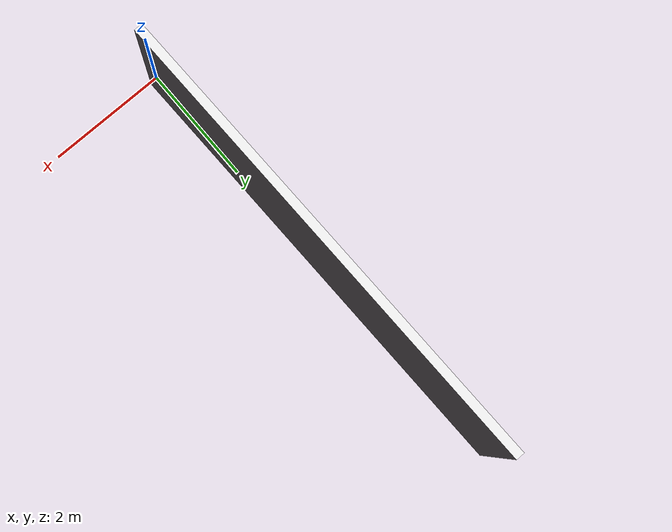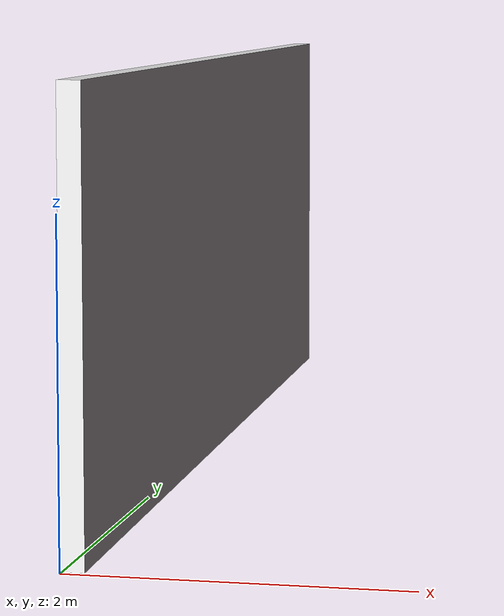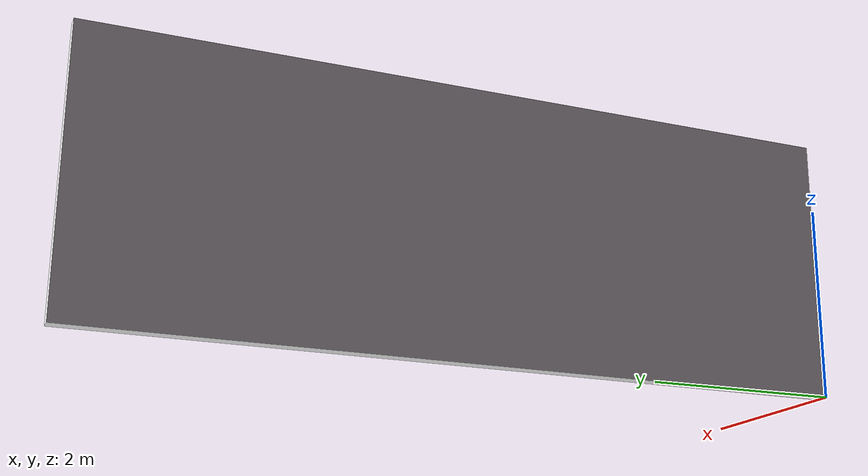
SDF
<?xml version="1.0" ?>

<sdf version="1.4">
    <model name="wall_one">
        <static> true </static>
        <link name="wall_one_link">
            <collision name="wall_one_collision">
                <geometry>
                    <box>
                        <size> 3.28 0.9 0. </size>
                    </box>
                </geometry>
            </collision>
            <visual name="wall_one_mesh">
                <cast_shadows> true </cast_shadows>
                <geometry>
                    <mesh>
                        <uri>model://wall_one/wall_one.dae</uri>
                    </mesh>
                </geometry>
            </visual>
        </link>
    </model>
</sdf>
